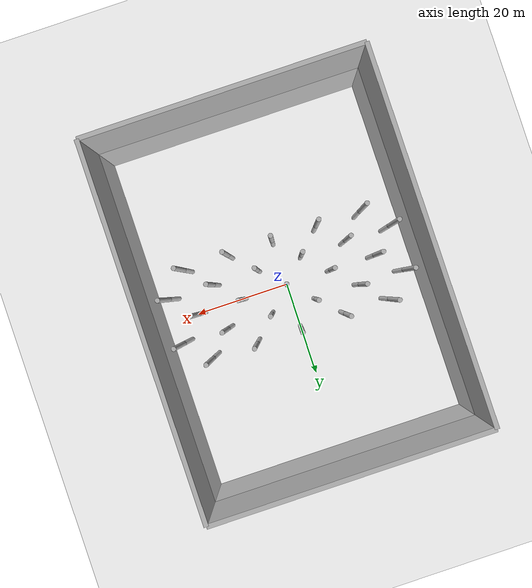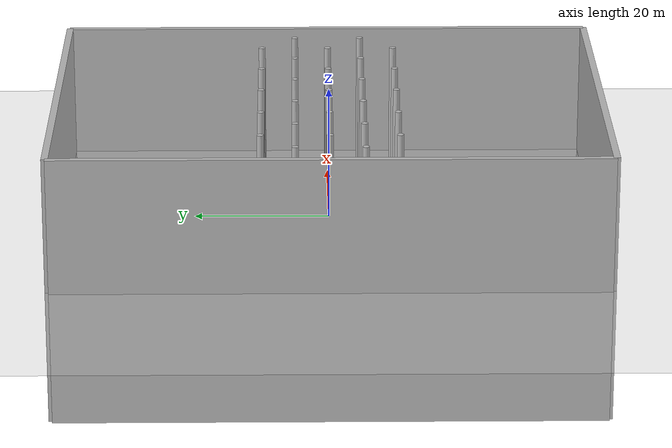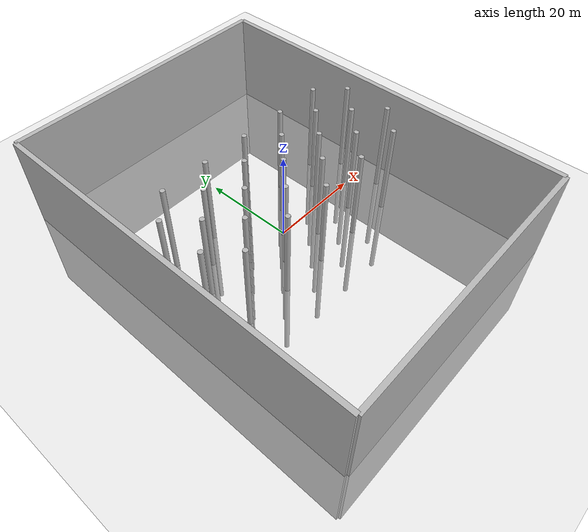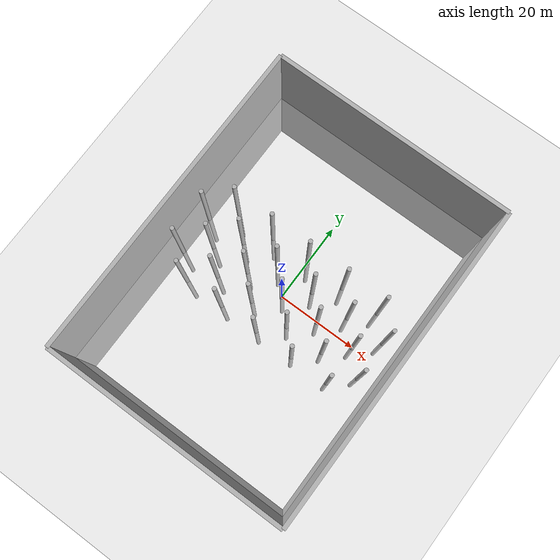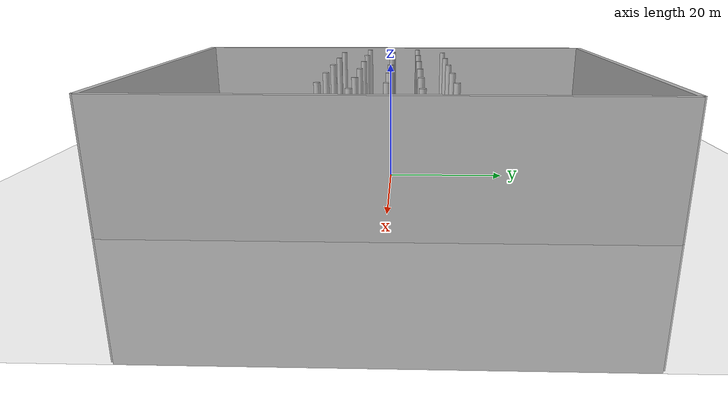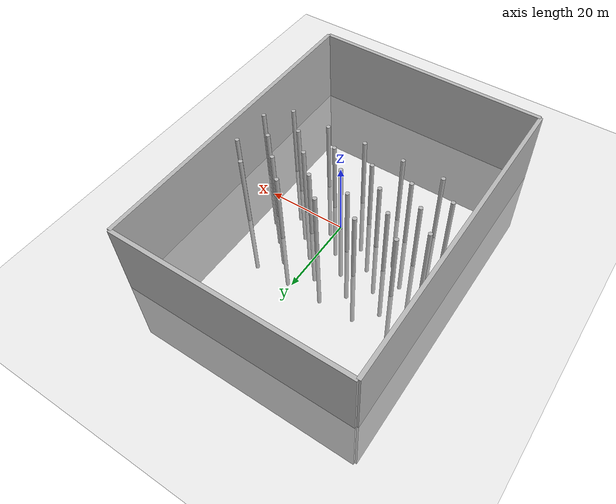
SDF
<?xml version="1.0"?>
<sdf version="1.4">
  <world name="default">
    <include>
      <uri>model://ground_plane</uri>
    </include>
    <include>
      <uri>model://sun</uri>
    </include>
    <scene>
      <shadows>0</shadows>
    </scene>

    <model name='Wall'>
      <static>true</static>
      <link name="wall1">
        <pose>30 0 0 0 0 0 </pose>
        <visual name="visual">
          <geometry>
            <box>
              <size>1 80 40</size>
            </box>
          </geometry>
        </visual>
        <collision name="collision">
          <geometry>
            <box>
              <size>1 80 40</size>
            </box>
          </geometry>
          <max_contacts>10</max_contacts>
        </collision>
      </link>
      <link name="wall2">
        <pose>-30 0 0 0 0 0 </pose>
        <visual name="visual">
          <geometry>
            <box>
              <size>1 80 40</size>
            </box>
          </geometry>
        </visual>
        <collision name="collision">
          <geometry>
            <box>
              <size>1 80 40</size>
            </box>
          </geometry>
          <max_contacts>10</max_contacts>
        </collision>
      </link>
      <link name="wall3">
        <pose>0 -40 0 0 0 1.57 </pose>
        <visual name="visual">
          <geometry>
            <box>
              <size>1 60 40</size>
            </box>
          </geometry>
        </visual>
        <collision name="collision">
          <geometry>
            <box>
              <size>1 60 40</size>
            </box>
          </geometry>
          <max_contacts>10</max_contacts>
        </collision>
      </link>
      <link name="wall4">
        <pose>0 40 0 0 0 1.57 </pose>
        <visual name="visual">
          <geometry>
            <box>
              <size>1 60 40</size>
            </box>
          </geometry>
        </visual>
        <collision name="collision">
          <geometry>
            <box>
              <size>1 60 40</size>
            </box>
          </geometry>
          <max_contacts>10</max_contacts>
        </collision>
      </link>
    </model>

    <model name='Row_of_Poles'>
      <static>true</static>
      <link name="pole1">
        <pose>-20 0 0 0 0 0 </pose>
        <visual name="visual">
          <geometry>
            <cylinder>
              <radius>0.5</radius>
              <length>40</length>
            </cylinder>
          </geometry>
        </visual>
        <collision name="collision">
          <geometry>
            <cylinder>
              <radius>0.5</radius>
              <length>40</length>
            </cylinder>
          </geometry>
          <max_contacts>10</max_contacts>
        </collision>
      </link>
      <link name="pole2">
        <pose>-10 0 0 0 0 0 </pose>
        <visual name="visual">
          <geometry>
            <cylinder>
              <radius>0.5</radius>
              <length>40</length>
            </cylinder>
          </geometry>
        </visual>
        <collision name="collision">
          <geometry>
            <cylinder>
              <radius>0.5</radius>
              <length>40</length>
            </cylinder>
          </geometry>
          <max_contacts>10</max_contacts>
        </collision>
      </link>
      <link name="pole3">
        <pose>0 0 0 0 0 0 </pose>
        <visual name="visual">
          <geometry>
            <cylinder>
              <radius>0.5</radius>
              <length>40</length>
            </cylinder>
          </geometry>
        </visual>
        <collision name="collision">
          <geometry>
            <cylinder>
              <radius>0.5</radius>
              <length>40</length>
            </cylinder>
          </geometry>
          <max_contacts>10</max_contacts>
        </collision>
      </link>
      <link name="pole4">
        <pose>10 0 0 0 0 0 </pose>
        <visual name="visual">
          <geometry>
            <cylinder>
              <radius>0.5</radius>
              <length>40</length>
            </cylinder>
          </geometry>
        </visual>
        <collision name="collision">
          <geometry>
            <cylinder>
              <radius>0.5</radius>
              <length>40</length>
            </cylinder>
          </geometry>
          <max_contacts>10</max_contacts>
        </collision>
      </link>
      <link name="pole5">
        <pose>20 0 0 0 0 0 </pose>
        <visual name="visual">
          <geometry>
            <cylinder>
              <radius>0.5</radius>
              <length>40</length>
            </cylinder>
          </geometry>
        </visual>
        <collision name="collision">
          <geometry>
            <cylinder>
              <radius>0.5</radius>
              <length>40</length>
            </cylinder>
          </geometry>
          <max_contacts>10</max_contacts>
        </collision>
      </link>
    </model>

    <model name='Row_of_Poles2'>
      <static>true</static>
      <link name="pole1">
        <pose>-20 10 0 0 0 0 </pose>
        <visual name="visual">
          <geometry>
            <cylinder>
              <radius>0.5</radius>
              <length>40</length>
            </cylinder>
          </geometry>
        </visual>
        <collision name="collision">
          <geometry>
            <cylinder>
              <radius>0.5</radius>
              <length>40</length>
            </cylinder>
          </geometry>
          <max_contacts>10</max_contacts>
        </collision>
      </link>
      <link name="pole2">
        <pose>-10 10 0 0 0 0 </pose>
        <visual name="visual">
          <geometry>
            <cylinder>
              <radius>0.5</radius>
              <length>40</length>
            </cylinder>
          </geometry>
        </visual>
        <collision name="collision">
          <geometry>
            <cylinder>
              <radius>0.5</radius>
              <length>40</length>
            </cylinder>
          </geometry>
          <max_contacts>10</max_contacts>
        </collision>
      </link>
      <link name="pole3">
        <pose>0 10 0 0 0 0 </pose>
        <visual name="visual">
          <geometry>
            <cylinder>
              <radius>0.5</radius>
              <length>40</length>
            </cylinder>
          </geometry>
        </visual>
        <collision name="collision">
          <geometry>
            <cylinder>
              <radius>0.5</radius>
              <length>40</length>
            </cylinder>
          </geometry>
          <max_contacts>10</max_contacts>
        </collision>
      </link>
      <link name="pole4">
        <pose>10 10 0 0 0 0 </pose>
        <visual name="visual">
          <geometry>
            <cylinder>
              <radius>0.5</radius>
              <length>40</length>
            </cylinder>
          </geometry>
        </visual>
        <collision name="collision">
          <geometry>
            <cylinder>
              <radius>0.5</radius>
              <length>40</length>
            </cylinder>
          </geometry>
          <max_contacts>10</max_contacts>
        </collision>
      </link>
      <link name="pole5">
        <pose>20 10 0 0 0 0 </pose>
        <visual name="visual">
          <geometry>
            <cylinder>
              <radius>0.5</radius>
              <length>40</length>
            </cylinder>
          </geometry>
        </visual>
        <collision name="collision">
          <geometry>
            <cylinder>
              <radius>0.5</radius>
              <length>40</length>
            </cylinder>
          </geometry>
          <max_contacts>10</max_contacts>
        </collision>
      </link>
    </model>

    <model name='Row_of_Poles3'>
      <static>true</static>
      <link name="pole1">
        <pose>-20 -10 0 0 0 0 </pose>
        <visual name="visual">
          <geometry>
            <cylinder>
              <radius>0.5</radius>
              <length>40</length>
            </cylinder>
          </geometry>
        </visual>
        <collision name="collision">
          <geometry>
            <cylinder>
              <radius>0.5</radius>
              <length>40</length>
            </cylinder>
          </geometry>
          <max_contacts>10</max_contacts>
        </collision>
      </link>
      <link name="pole2">
        <pose>-10 -10 0 0 0 0 </pose>
        <visual name="visual">
          <geometry>
            <cylinder>
              <radius>0.5</radius>
              <length>40</length>
            </cylinder>
          </geometry>
        </visual>
        <collision name="collision">
          <geometry>
            <cylinder>
              <radius>0.5</radius>
              <length>40</length>
            </cylinder>
          </geometry>
          <max_contacts>10</max_contacts>
        </collision>
      </link>
      <link name="pole3">
        <pose>0 -10 0 0 0 0 </pose>
        <visual name="visual">
          <geometry>
            <cylinder>
              <radius>0.5</radius>
              <length>40</length>
            </cylinder>
          </geometry>
        </visual>
        <collision name="collision">
          <geometry>
            <cylinder>
              <radius>0.5</radius>
              <length>40</length>
            </cylinder>
          </geometry>
          <max_contacts>10</max_contacts>
        </collision>
      </link>
      <link name="pole4">
        <pose>10 -10 0 0 0 0 </pose>
        <visual name="visual">
          <geometry>
            <cylinder>
              <radius>0.5</radius>
              <length>40</length>
            </cylinder>
          </geometry>
        </visual>
        <collision name="collision">
          <geometry>
            <cylinder>
              <radius>0.5</radius>
              <length>40</length>
            </cylinder>
          </geometry>
          <max_contacts>10</max_contacts>
        </collision>
      </link>
      <link name="pole5">
        <pose>20 -10 0 0 0 0 </pose>
        <visual name="visual">
          <geometry>
            <cylinder>
              <radius>0.5</radius>
              <length>40</length>
            </cylinder>
          </geometry>
        </visual>
        <collision name="collision">
          <geometry>
            <cylinder>
              <radius>0.5</radius>
              <length>40</length>
            </cylinder>
          </geometry>
          <max_contacts>10</max_contacts>
        </collision>
      </link>
    </model>

    <model name='Row_of_Poles4'>
      <static>true</static>
      <link name="pole1">
        <pose>-25 5 0 0 0 0 </pose>
        <visual name="visual">
          <geometry>
            <cylinder>
              <radius>0.5</radius>
              <length>40</length>
            </cylinder>
          </geometry>
        </visual>
        <collision name="collision">
          <geometry>
            <cylinder>
              <radius>0.5</radius>
              <length>40</length>
            </cylinder>
          </geometry>
          <max_contacts>10</max_contacts>
        </collision>
      </link>
      <link name="pole2">
        <pose>-15 5 0 0 0 0 </pose>
        <visual name="visual">
          <geometry>
            <cylinder>
              <radius>0.5</radius>
              <length>40</length>
            </cylinder>
          </geometry>
        </visual>
        <collision name="collision">
          <geometry>
            <cylinder>
              <radius>0.5</radius>
              <length>40</length>
            </cylinder>
          </geometry>
          <max_contacts>10</max_contacts>
        </collision>
      </link>
      <link name="pole3">
        <pose>-5 5 0 0 0 0 </pose>
        <visual name="visual">
          <geometry>
            <cylinder>
              <radius>0.5</radius>
              <length>40</length>
            </cylinder>
          </geometry>
        </visual>
        <collision name="collision">
          <geometry>
            <cylinder>
              <radius>0.5</radius>
              <length>40</length>
            </cylinder>
          </geometry>
          <max_contacts>10</max_contacts>
        </collision>
      </link>
      <link name="pole4">
        <pose>5 5 0 0 0 0 </pose>
        <visual name="visual">
          <geometry>
            <cylinder>
              <radius>0.5</radius>
              <length>40</length>
            </cylinder>
          </geometry>
        </visual>
        <collision name="collision">
          <geometry>
            <cylinder>
              <radius>0.5</radius>
              <length>40</length>
            </cylinder>
          </geometry>
          <max_contacts>10</max_contacts>
        </collision>
      </link>
      <link name="pole5">
        <pose>15 5 0 0 0 0 </pose>
        <visual name="visual">
          <geometry>
            <cylinder>
              <radius>0.5</radius>
              <length>40</length>
            </cylinder>
          </geometry>
        </visual>
        <collision name="collision">
          <geometry>
            <cylinder>
              <radius>0.5</radius>
              <length>40</length>
            </cylinder>
          </geometry>
          <max_contacts>10</max_contacts>
        </collision>
      </link>
      <link name="pole6">
        <pose>25 5 0 0 0 0 </pose>
        <visual name="visual">
          <geometry>
            <cylinder>
              <radius>0.5</radius>
              <length>40</length>
            </cylinder>
          </geometry>
        </visual>
        <collision name="collision">
          <geometry>
            <cylinder>
              <radius>0.5</radius>
              <length>40</length>
            </cylinder>
          </geometry>
          <max_contacts>10</max_contacts>
        </collision>
      </link>
    </model>

    <model name='Row_of_Poles5'>
      <static>true</static>
      <link name="pole1">
        <pose>-25 -5 0 0 0 0 </pose>
        <visual name="visual">
          <geometry>
            <cylinder>
              <radius>0.5</radius>
              <length>40</length>
            </cylinder>
          </geometry>
        </visual>
        <collision name="collision">
          <geometry>
            <cylinder>
              <radius>0.5</radius>
              <length>40</length>
            </cylinder>
          </geometry>
          <max_contacts>10</max_contacts>
        </collision>
      </link>
      <link name="pole2">
        <pose>-15 -5 0 0 0 0 </pose>
        <visual name="visual">
          <geometry>
            <cylinder>
              <radius>0.5</radius>
              <length>40</length>
            </cylinder>
          </geometry>
        </visual>
        <collision name="collision">
          <geometry>
            <cylinder>
              <radius>0.5</radius>
              <length>40</length>
            </cylinder>
          </geometry>
          <max_contacts>10</max_contacts>
        </collision>
      </link>
      <link name="pole3">
        <pose>-5 -5 0 0 0 0 </pose>
        <visual name="visual">
          <geometry>
            <cylinder>
              <radius>0.5</radius>
              <length>40</length>
            </cylinder>
          </geometry>
        </visual>
        <collision name="collision">
          <geometry>
            <cylinder>
              <radius>0.5</radius>
              <length>40</length>
            </cylinder>
          </geometry>
          <max_contacts>10</max_contacts>
        </collision>
      </link>
      <link name="pole4">
        <pose>5 -5 0 0 0 0 </pose>
        <visual name="visual">
          <geometry>
            <cylinder>
              <radius>0.5</radius>
              <length>40</length>
            </cylinder>
          </geometry>
        </visual>
        <collision name="collision">
          <geometry>
            <cylinder>
              <radius>0.5</radius>
              <length>40</length>
            </cylinder>
          </geometry>
          <max_contacts>10</max_contacts>
        </collision>
      </link>
      <link name="pole5">
        <pose>15 -5 0 0 0 0 </pose>
        <visual name="visual">
          <geometry>
            <cylinder>
              <radius>0.5</radius>
              <length>40</length>
            </cylinder>
          </geometry>
        </visual>
        <collision name="collision">
          <geometry>
            <cylinder>
              <radius>0.5</radius>
              <length>40</length>
            </cylinder>
          </geometry>
          <max_contacts>10</max_contacts>
        </collision>
      </link>
      <link name="pole6">
        <pose>25 -5 0 0 0 0 </pose>
        <visual name="visual">
          <geometry>
            <cylinder>
              <radius>0.5</radius>
              <length>40</length>
            </cylinder>
          </geometry>
        </visual>
        <collision name="collision">
          <geometry>
            <cylinder>
              <radius>0.5</radius>
              <length>40</length>
            </cylinder>
          </geometry>
          <max_contacts>10</max_contacts>
        </collision>
      </link>
    </model>
    <gui>
        <camera name="user_camera">
            <pose>-20 -10 100 0 1.4 0</pose>
        </camera>
    </gui>

    <!-- Physics settings -->
    <physics name='default_physics' default='0' type='ode'>
      <max_step_size>0.001</max_step_size>
      <real_time_factor>.25</real_time_factor>
      <real_time_update_rate>250</real_time_update_rate>
    </physics>
  </world>
</sdf>
